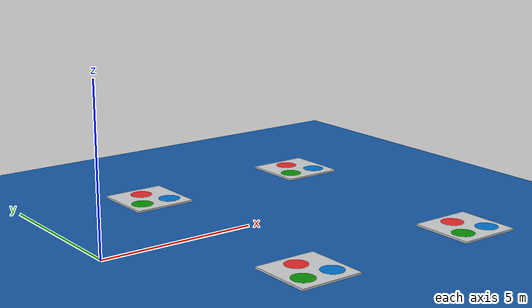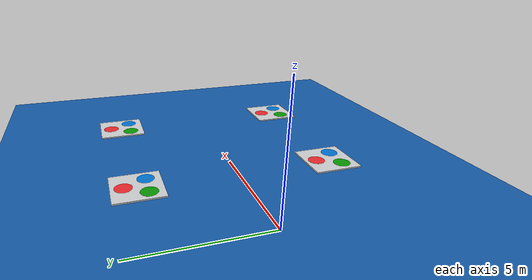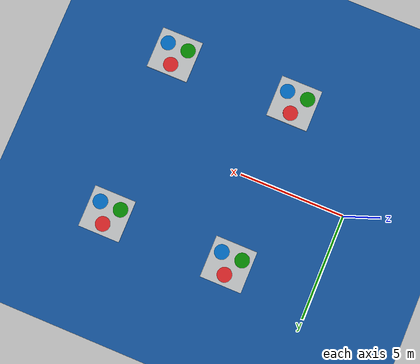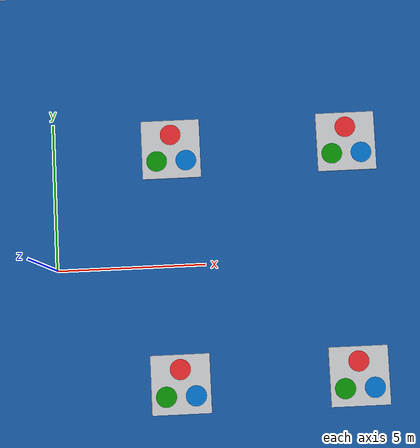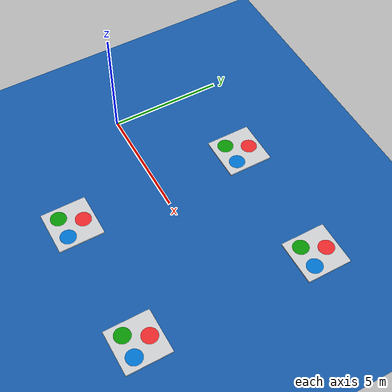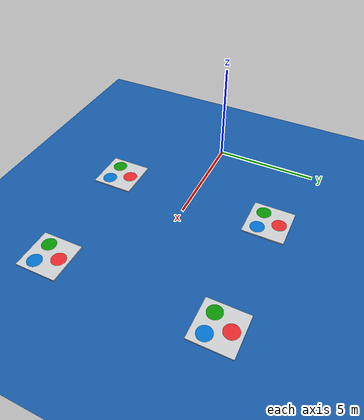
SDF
<sdf version='1.9'>
  <world name='color_landing_pad_world'>
    <physics type="ode">
      <max_step_size>0.004</max_step_size>
      <real_time_factor>1.0</real_time_factor>
      <real_time_update_rate>250</real_time_update_rate>
    </physics>

    <plugin name='gz::sim::systems::Physics' filename='gz-sim-physics-system'/>
    <plugin name='gz::sim::systems::UserCommands' filename='gz-sim-user-commands-system'/>
    <plugin name='gz::sim::systems::SceneBroadcaster' filename='gz-sim-scene-broadcaster-system'/>
    <plugin name='gz::sim::systems::Contact' filename='gz-sim-contact-system'/>
    <plugin name='gz::sim::systems::Imu' filename='gz-sim-imu-system'/>
    <plugin name='gz::sim::systems::AirPressure' filename='gz-sim-air-pressure-system'/>
    <plugin name='gz::sim::systems::Sensors' filename='gz-sim-sensors-system'>
      <render_engine>ogre2</render_engine>
    </plugin>

    <plugin name='gz::sim::systems::WindEffects' filename='gz-sim-wind-effects-system'>
      <force_approximation_scaling_factor>1</force_approximation_scaling_factor>
      <falloff_factor>0</falloff_factor>
    </plugin>

    <wind>
      <linear_velocity>0 10.0 0</linear_velocity>
    </wind>

    <gui fullscreen='false'>
      <plugin name='3D View' filename='GzScene3D'>
        <gz-gui>
          <title>3D View</title>
          <property type='bool' key='showTitleBar'>0</property>
          <property type='string' key='state'>docked</property>
        </gz-gui>
        <engine>ogre2</engine>
        <scene>scene</scene>
        <ambient_light>0.598 0.598 0.598</ambient_light>
        <background_color>0.2 0.5 0.8</background_color>
        <camera_pose>-6 0 6 0 0.5 0</camera_pose>
      </plugin>
      <plugin name='World control' filename='WorldControl'>
        <gz-gui>
          <title>World control</title>
          <property type='bool' key='showTitleBar'>0</property>
          <property type='bool' key='resizable'>0</property>
          <property type='double' key='height'>72</property>
          <property type='double' key='width'>121</property>
          <property type='double' key='z'>1</property>
          <property type='string' key='state'>floating</property>
          <anchors target='3D View'>
            <line own='left' target='left'/>
            <line own='bottom' target='bottom'/>
          </anchors>
        </gz-gui>
        <play_pause>1</play_pause>
        <step>1</step>
        <start_paused>1</start_paused>
      </plugin>
      <plugin name='World stats' filename='WorldStats'>
        <gz-gui>
          <title>World stats</title>
          <property type='bool' key='showTitleBar'>0</property>
          <property type='bool' key='resizable'>0</property>
          <property type='double' key='height'>110</property>
          <property type='double' key='width'>290</property>
          <property type='double' key='z'>1</property>
          <property type='string' key='state'>floating</property>
          <anchors target='3D View'>
            <line own='right' target='right'/>
            <line own='bottom' target='bottom'/>
          </anchors>
        </gz-gui>
        <sim_time>1</sim_time>
        <real_time>1</real_time>
        <real_time_factor>1</real_time_factor>
        <iterations>1</iterations>
      </plugin>
      <plugin name='Entity tree' filename='EntityTree'/>
    </gui>

    <gravity>0 0 -9.8</gravity>
    <magnetic_field>6e-06 2.3e-05 -4.2e-05</magnetic_field>
    <atmosphere type='adiabatic'/>
    <scene>
      <grid>false</grid>
      <ambient>0.4 0.4 0.4 1</ambient>
      <background>0.2 0.5 0.8 1</background>
      <shadows>true</shadows>
    </scene>

    <model name='ground_plane'>
      <static>true</static>
      <link name='link'>
        <collision name='collision'>
          <geometry>
            <plane>
              <normal>0 0 1</normal>
              <size>1 1</size>
            </plane>
          </geometry>
          <surface>
            <friction>
              <ode/>
            </friction>
            <bounce/>
            <contact/>
          </surface>
        </collision>
        <visual name='visual'>
          <geometry>
            <plane>
              <normal>0 0 1</normal>
              <size>100 100</size>
            </plane>
          </geometry>
          <material>
            <ambient>0.08 0.35 0.65 1</ambient>
            <diffuse>0.08 0.35 0.65 1</diffuse>
            <specular>0.5 0.5 0.5 1</specular>
          </material>
        </visual>
      </link>
    </model>

    <light name='sun' type='directional'>
      <pose>0 0 500 0 -0 0</pose>
      <cast_shadows>true</cast_shadows>
      <intensity>1</intensity>
      <direction>0.001 0.625 -0.78</direction>
      <diffuse>0.904 0.904 0.904 1</diffuse>
      <specular>0.271 0.271 0.271 1</specular>
    </light>

    <include>
      <uri>model://landingpad_2026</uri>
      <name>landing_pad_0</name>
      <pose>4 4 0.0 0 0 0</pose>
    </include>

    <include>
      <uri>model://landingpad_2026</uri>
      <name>landing_pad_1</name>
      <pose>4 -4 0.0 0 0 0</pose>
    </include>

    <include>
      <uri>model://landingpad_2026</uri>
      <name>landing_pad_2</name>
      <pose>10 4 0.0 0 0 0</pose>
    </include>

    <include>
      <uri>model://landingpad_2026</uri>
      <name>landing_pad_3</name>
      <pose>10 -4 0.0 0 0 0</pose>
    </include>

  </world>
</sdf>

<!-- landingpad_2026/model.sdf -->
<sdf version="1.9">
  <model name="robotx_landing_pad_2026">
    <pose>0 0 0.05 0 0 0</pose>
    <static>true</static>

    <link name="link">

      <inertial>
        <mass>10.0</mass>
        <inertia>
          <ixx>0.1</ixx>
          <ixy>0.0</ixy>
          <ixz>0.0</ixz>
          <iyy>0.1</iyy>
          <iyz>0.0</iyz>
          <izz>0.1</izz>
        </inertia>
      </inertial>

      <collision name="collision">
        <geometry>
          <box>
            <size>2 2 0.1</size>
          </box>
        </geometry>
      </collision>

      <visual name="base_visual">
        <geometry>
          <box>
            <size>2 2 0.1</size>
          </box>
        </geometry>
        <material>
          <ambient>0.800 0.808 0.816 1</ambient>
          <diffuse>0.800 0.808 0.816 1</diffuse>
        </material>
      </visual>

      <visual name="red_circle">
        <pose>0.0 0.5 0.051 0 0 0</pose>
        <geometry>
          <cylinder>
            <radius>0.35</radius>
            <length>0.002</length>
          </cylinder>
        </geometry>
        <material>
          <ambient>0.910 0.157 0.169 1</ambient>
          <diffuse>0.910 0.157 0.169 1</diffuse>
        </material>
      </visual>

      <visual name="green_circle">
        <pose>-0.5 -0.4 0.051 0 0 0</pose>
        <geometry>
          <cylinder>
            <radius>0.35</radius>
            <length>0.002</length>
          </cylinder>
        </geometry>
        <material>
          <ambient>0.031 0.580 0.016 1</ambient>
          <diffuse>0.031 0.580 0.016 1</diffuse>
        </material>
      </visual>

      <visual name="blue_circle">
        <pose>0.5 -0.4 0.051 0 0 0</pose>
        <geometry>
          <cylinder>
            <radius>0.35</radius>
            <length>0.002</length>
          </cylinder>
        </geometry>
        <material>
          <ambient>0.000 0.447 0.808 1</ambient>
          <diffuse>0.000 0.447 0.808 1</diffuse>
        </material>
      </visual>

    </link>
  </model>
</sdf>
